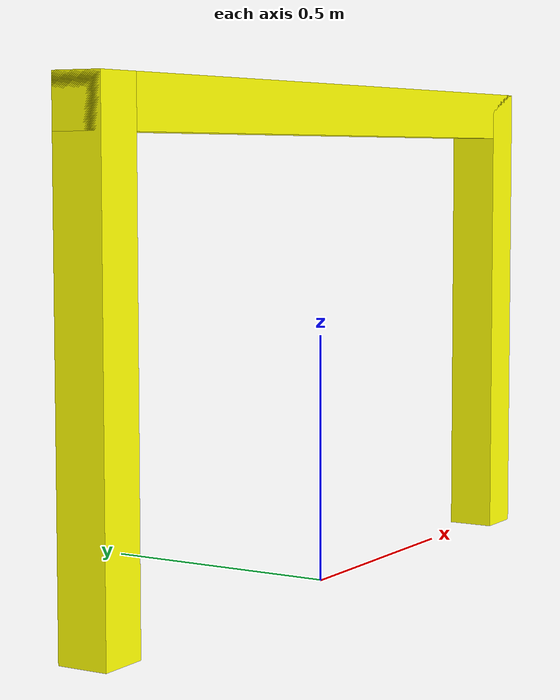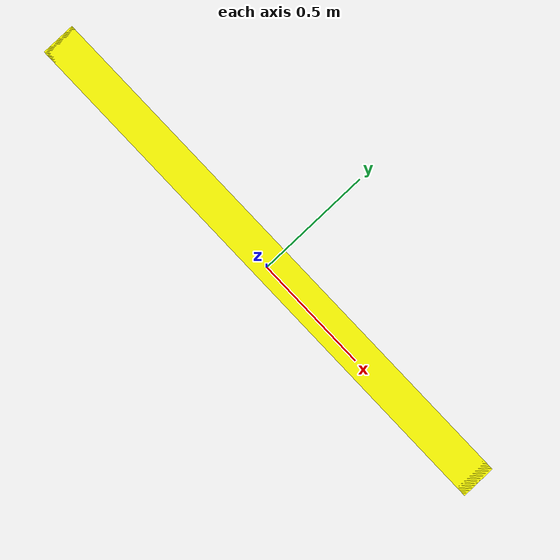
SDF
<?xml version="1.0" ?>
<!--
  FIRA Air - Yellow Gate Obstacle
  Drone must fly THROUGH this gate (under the top bar)
  Dimensions: 1.5m wide x 1m high x 10cm thick pillars
-->
<sdf version="1.9">
  <model name="gate_yellow">
    <static>true</static>
    <link name="link">

      <!-- Left pillar -->
      <visual name="pillar_left">
        <pose>-0.75 0 0.5 0 0 0</pose>
        <geometry>
          <box>
            <size>0.1 0.1 1</size>
          </box>
        </geometry>
        <material>
          <ambient>0.9 0.9 0.0 1</ambient>
          <diffuse>1.0 1.0 0.0 1</diffuse>
          <specular>0.5 0.5 0.0 1</specular>
        </material>
      </visual>

      <collision name="collision_left">
        <pose>-0.75 0 0.5 0 0 0</pose>
        <geometry>
          <box>
            <size>0.1 0.1 1</size>
          </box>
        </geometry>
      </collision>

      <!-- Right pillar -->
      <visual name="pillar_right">
        <pose>0.75 0 0.5 0 0 0</pose>
        <geometry>
          <box>
            <size>0.1 0.1 1</size>
          </box>
        </geometry>
        <material>
          <ambient>0.9 0.9 0.0 1</ambient>
          <diffuse>1.0 1.0 0.0 1</diffuse>
          <specular>0.5 0.5 0.0 1</specular>
        </material>
      </visual>

      <collision name="collision_right">
        <pose>0.75 0 0.5 0 0 0</pose>
        <geometry>
          <box>
            <size>0.1 0.1 1</size>
          </box>
        </geometry>
      </collision>

      <!-- Top bar -->
      <visual name="top_bar">
        <pose>0 0 0.95 0 0 0</pose>
        <geometry>
          <box>
            <size>1.6 0.1 0.1</size>
          </box>
        </geometry>
        <material>
          <ambient>0.9 0.9 0.0 1</ambient>
          <diffuse>1.0 1.0 0.0 1</diffuse>
          <specular>0.5 0.5 0.0 1</specular>
        </material>
      </visual>

      <collision name="collision_top">
        <pose>0 0 0.95 0 0 0</pose>
        <geometry>
          <box>
            <size>1.6 0.1 0.1</size>
          </box>
        </geometry>
      </collision>

      <!-- Decorative stripes on pillars -->
      <visual name="stripe_left_1">
        <pose>-0.75 0.051 0.3 0 0 0</pose>
        <geometry>
          <box>
            <size>0.08 0.001 0.1</size>
          </box>
        </geometry>
        <material>
          <ambient>0 0 0 1</ambient>
          <diffuse>0 0 0 1</diffuse>
        </material>
      </visual>

      <visual name="stripe_left_2">
        <pose>-0.75 0.051 0.6 0 0 0</pose>
        <geometry>
          <box>
            <size>0.08 0.001 0.1</size>
          </box>
        </geometry>
        <material>
          <ambient>0 0 0 1</ambient>
          <diffuse>0 0 0 1</diffuse>
        </material>
      </visual>

      <visual name="stripe_right_1">
        <pose>0.75 0.051 0.3 0 0 0</pose>
        <geometry>
          <box>
            <size>0.08 0.001 0.1</size>
          </box>
        </geometry>
        <material>
          <ambient>0 0 0 1</ambient>
          <diffuse>0 0 0 1</diffuse>
        </material>
      </visual>

      <visual name="stripe_right_2">
        <pose>0.75 0.051 0.6 0 0 0</pose>
        <geometry>
          <box>
            <size>0.08 0.001 0.1</size>
          </box>
        </geometry>
        <material>
          <ambient>0 0 0 1</ambient>
          <diffuse>0 0 0 1</diffuse>
        </material>
      </visual>

    </link>
  </model>
</sdf>
